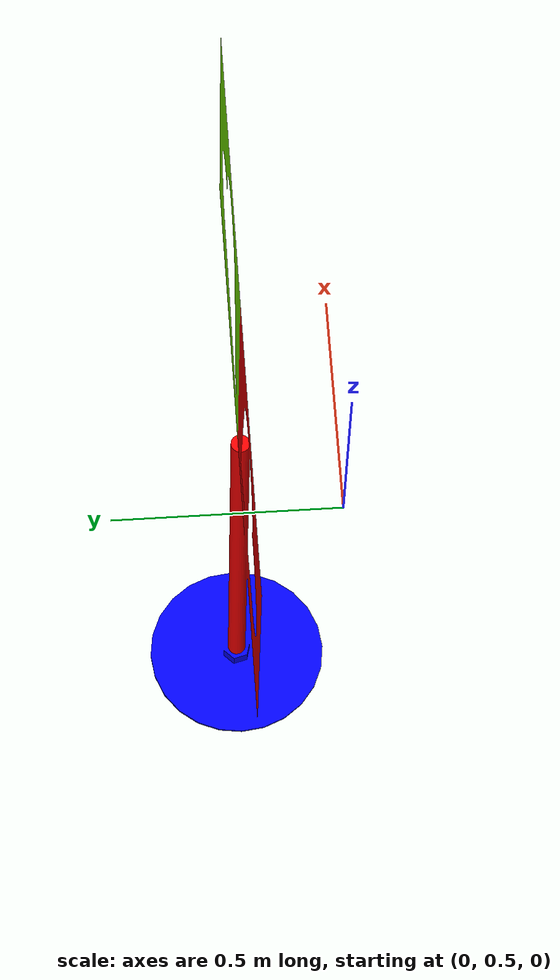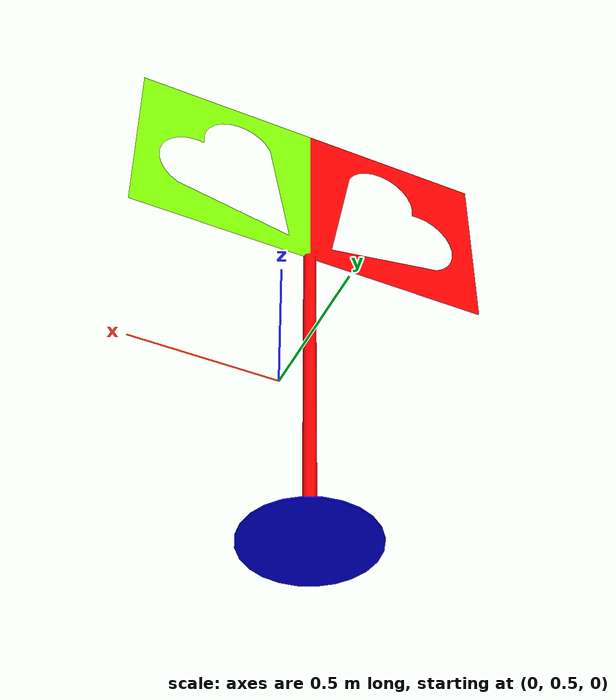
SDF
<?xml version="1.0" ?>
<sdf version="1.5">
  <model name="Cupid">
    <static>0</static>
    <link name="cupid_link">
      <inertial>
        <pose>0.0 0.0 0.0 0.0 0.0 0.0</pose>
        <mass> 3.0 </mass>
        <inertia>
          <ixx> 0.0</ixx>
          <ixy> 0.0 </ixy>
          <ixz> 0.0 </ixz>
          <iyy> 0.0 </iyy>
          <iyz> 0.0 </iyz>
          <izz> 0.0 </izz>
        </inertia>
      </inertial>
      <collision name="collision">
        <geometry>
          <mesh>
            <uri>model://cupid/meshes/cupid.dae</uri>
          </mesh>
        </geometry>
      </collision>
      <visual name="visual">
        <geometry>
          <mesh>
            <uri>model://cupid/meshes/cupid.dae</uri>
          </mesh>
        </geometry>
      </visual>
    </link>
  </model>
</sdf>
